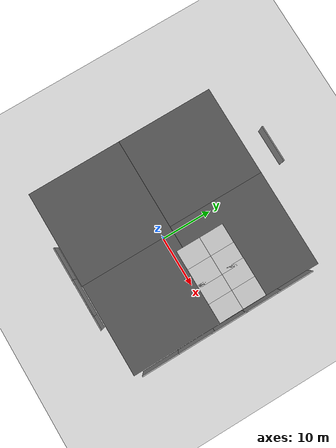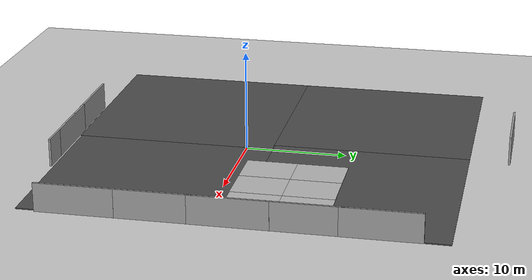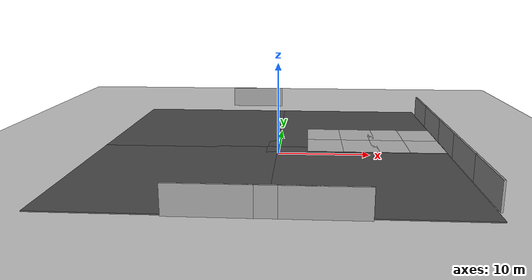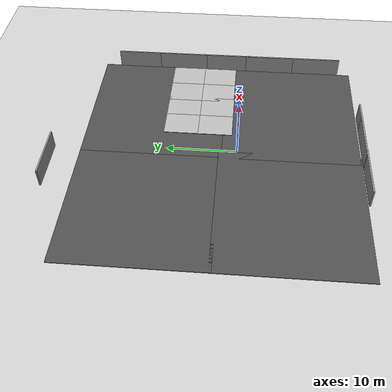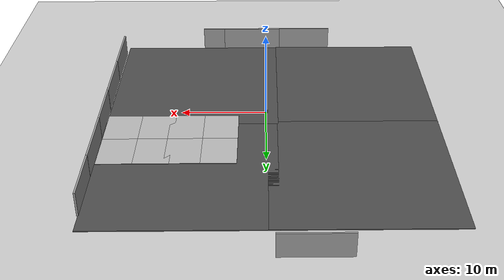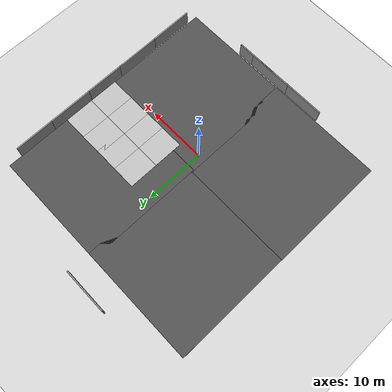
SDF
<sdf version="1.6">
 <world name="default">
  <model name="ground_plane">
   <static>1</static>
   <link name="link">
    <collision name="collision">
     <geometry><plane><normal>0 0 1</normal><size>100 100</size></plane></geometry>
     <surface><friction><ode><mu>100</mu><mu2>50</mu2></ode></friction></surface>
    </collision>
    <visual name="visual">
     <cast_shadows>0</cast_shadows>
     <geometry><plane><normal>0 0 1</normal><size>100 100</size></plane></geometry>
     <material>
      <script><uri>file://media/materials/scripts/gazebo.material</uri><name>Gazebo/Grey</name></script>
     </material>
    </visual>
   </link>
  </model>
  <model name="asphalt_plane">
   <static>1</static>
   <link name="link">
    <collision name="collision">
     <geometry><box><size>20 20 0.1</size></box></geometry>
     <surface><friction><ode><mu>100</mu><mu2>50</mu2></ode></friction></surface>
    </collision>
    <visual name="visual">
     <cast_shadows>0</cast_shadows>
     <geometry><box><size>20 20 0.1</size></box></geometry>
     <material>
      <script>
       <uri>model://asphalt_plane/materials/scripts</uri>
       <uri>model://asphalt_plane/materials/textures</uri>
       <name>vrc/asphalt</name>
      </script>
     </material>
    </visual>
   </link>
   <pose>-10.1692 -7.43707 0 0 -0 0</pose>
  </model>
  <model name="asphalt_plane_clone">
   <static>1</static>
   <link name="link">
    <collision name="collision">
     <geometry><box><size>20 20 0.1</size></box></geometry>
     <surface><friction><ode><mu>100</mu><mu2>50</mu2></ode></friction></surface>
    </collision>
    <visual name="visual">
     <cast_shadows>0</cast_shadows>
     <geometry><box><size>20 20 0.1</size></box></geometry>
     <material>
      <script>
       <uri>model://asphalt_plane/materials/scripts</uri>
       <uri>model://asphalt_plane/materials/textures</uri>
       <name>vrc/asphalt</name>
      </script>
     </material>
    </visual>
   </link>
   <pose>-10.1603 12.171 0 0 -0 0</pose>
  </model>
  <model name="asphalt_plane_clone_clone">
   <static>1</static>
   <link name="link">
    <collision name="collision">
     <geometry><box><size>20 20 0.1</size></box></geometry>
     <surface><friction><ode><mu>100</mu><mu2>50</mu2></ode></friction></surface>
    </collision>
    <visual name="visual">
     <cast_shadows>0</cast_shadows>
     <geometry><box><size>20 20 0.1</size></box></geometry>
     <material>
      <script>
       <uri>model://asphalt_plane/materials/scripts</uri>
       <uri>model://asphalt_plane/materials/textures</uri>
       <name>vrc/asphalt</name>
      </script>
     </material>
    </visual>
   </link>
   <pose>8.71597 12.1785 0 0 -0 0</pose>
  </model>
  <model name="asphalt_plane_clone_clone_0">
   <static>1</static>
   <link name="link">
    <collision name="collision">
     <geometry><box><size>20 20 0.1</size></box></geometry>
     <surface><friction><ode><mu>100</mu><mu2>50</mu2></ode></friction></surface>
    </collision>
    <visual name="visual">
     <cast_shadows>0</cast_shadows>
     <geometry><box><size>20 20 0.1</size></box></geometry>
     <material>
      <script>
       <uri>model://asphalt_plane/materials/scripts</uri>
       <uri>model://asphalt_plane/materials/textures</uri>
       <name>vrc/asphalt</name>
      </script>
     </material>
    </visual>
   </link>
   <pose>8.60996 -7.34898 0 0 -0 0</pose>
  </model>
  <model name="grey_wall">
   <static>1</static>
   <link name="link">
    <pose>0 0 1.4 0 -0 0</pose>
    <collision name="collision"><geometry><box><size>7.5 0.2 2.8</size></box></geometry></collision>
    <visual name="visual">
     <cast_shadows>0</cast_shadows>
     <geometry><box><size>7.5 0.2 2.8</size></box></geometry>
     <material>
      <script>
       <uri>model://grey_wall/materials/scripts</uri>
       <uri>model://grey_wall/materials/textures</uri>
       <name>vrc/grey_wall</name>
      </script>
     </material>
    </visual>
   </link>
   <pose>-4.8114 -17.6626 0 0 -0 0</pose>
  </model>
  <model name="grey_wall_clone">
   <static>1</static>
   <link name="link">
    <pose>0 0 1.4 0 -0 0</pose>
    <collision name="collision"><geometry><box><size>7.5 0.2 2.8</size></box></geometry></collision>
    <visual name="visual">
     <cast_shadows>0</cast_shadows>
     <geometry><box><size>7.5 0.2 2.8</size></box></geometry>
     <material>
      <script>
       <uri>model://grey_wall/materials/scripts</uri>
       <uri>model://grey_wall/materials/textures</uri>
       <name>vrc/grey_wall</name>
      </script>
     </material>
    </visual>
   </link>
   <pose>1.84642 -17.6367 0 0 -0 0</pose>
  </model>
  <model name="grey_wall_clone_0">
   <static>1</static>
   <link name="link">
    <pose>0 0 1.4 0 -0 0</pose>
    <collision name="collision"><geometry><box><size>7.5 0.2 2.8</size></box></geometry></collision>
    <visual name="visual">
     <cast_shadows>0</cast_shadows>
     <geometry><box><size>7.5 0.2 2.8</size></box></geometry>
     <material>
      <script>
       <uri>model://grey_wall/materials/scripts</uri>
       <uri>model://grey_wall/materials/textures</uri>
       <name>vrc/grey_wall</name>
      </script>
     </material>
    </visual>
   </link>
   <pose>4.62088 -17.6372 0 0 -0 0</pose>
  </model>
  <model name="grey_wall_clone_clone">
   <static>1</static>
   <link name="link">
    <pose>0 0 1.4 0 -0 0</pose>
    <collision name="collision"><geometry><box><size>7.5 0.2 2.8</size></box></geometry></collision>
    <visual name="visual">
     <cast_shadows>0</cast_shadows>
     <geometry><box><size>7.5 0.2 2.8</size></box></geometry>
     <material>
      <script>
       <uri>model://grey_wall/materials/scripts</uri>
       <uri>model://grey_wall/materials/textures</uri>
       <name>vrc/grey_wall</name>
      </script>
     </material>
    </visual>
   </link>
   <pose>-4.48764 26.0166 0 0 -0 0</pose>
  </model>
  <model name="grey_wall_clone_clone_clone">
   <static>1</static>
   <link name="link">
    <pose>0 0 1.4 0 -0 0</pose>
    <collision name="collision"><geometry><box><size>7.5 0.2 2.8</size></box></geometry></collision>
    <visual name="visual">
     <cast_shadows>0</cast_shadows>
     <geometry><box><size>7.5 0.2 2.8</size></box></geometry>
     <material>
      <script>
       <uri>model://grey_wall/materials/scripts</uri>
       <uri>model://grey_wall/materials/textures</uri>
       <name>vrc/grey_wall</name>
      </script>
     </material>
    </visual>
   </link>
   <pose>18.7544 16.0387 0 0 0 -1.56734</pose>
  </model>
  <model name="grey_wall_clone_clone_clone_clone">
   <static>1</static>
   <link name="link">
    <pose>0 0 1.4 0 -0 0</pose>
    <collision name="collision"><geometry><box><size>7.5 0.2 2.8</size></box></geometry></collision>
    <visual name="visual">
     <cast_shadows>0</cast_shadows>
     <geometry><box><size>7.5 0.2 2.8</size></box></geometry>
     <material>
      <script>
       <uri>model://grey_wall/materials/scripts</uri>
       <uri>model://grey_wall/materials/textures</uri>
       <name>vrc/grey_wall</name>
      </script>
     </material>
    </visual>
   </link>
   <pose>18.767 9.41754 0 0 0 -1.56734</pose>
  </model>
  <model name="grey_wall_clone_clone_clone_clone_0">
   <static>1</static>
   <link name="link">
    <pose>0 0 1.4 0 -0 0</pose>
    <collision name="collision"><geometry><box><size>7.5 0.2 2.8</size></box></geometry></collision>
    <visual name="visual">
     <cast_shadows>0</cast_shadows>
     <geometry><box><size>7.5 0.2 2.8</size></box></geometry>
     <material>
      <script>
       <uri>model://grey_wall/materials/scripts</uri>
       <uri>model://grey_wall/materials/textures</uri>
       <name>vrc/grey_wall</name>
      </script>
     </material>
    </visual>
   </link>
   <pose>18.7963 2.45369 0 0 0 -1.56734</pose>
  </model>
  <model name="grey_wall_clone_clone_clone_clone_1">
   <static>1</static>
   <link name="link">
    <pose>0 0 1.4 0 -0 0</pose>
    <collision name="collision"><geometry><box><size>7.5 0.2 2.8</size></box></geometry></collision>
    <visual name="visual">
     <cast_shadows>0</cast_shadows>
     <geometry><box><size>7.5 0.2 2.8</size></box></geometry>
     <material>
      <script>
       <uri>model://grey_wall/materials/scripts</uri>
       <uri>model://grey_wall/materials/textures</uri>
       <name>vrc/grey_wall</name>
      </script>
     </material>
    </visual>
   </link>
   <pose>18.8058 -4.41342 0 0 0 -1.56734</pose>
  </model>
  <model name="grey_wall_clone_clone_clone_clone_2">
   <static>1</static>
   <link name="link">
    <pose>0 0 1.4 0 -0 0</pose>
    <collision name="collision"><geometry><box><size>7.5 0.2 2.8</size></box></geometry></collision>
    <visual name="visual">
     <cast_shadows>0</cast_shadows>
     <geometry><box><size>7.5 0.2 2.8</size></box></geometry>
     <material>
      <script>
       <uri>model://grey_wall/materials/scripts</uri>
       <uri>model://grey_wall/materials/textures</uri>
       <name>vrc/grey_wall</name>
      </script>
     </material>
    </visual>
   </link>
   <pose>18.8343 -11.7301 0 0 0 -1.56734</pose>
  </model>
  <model name="mud_box">
   <static>1</static>
   <link name="link">
    <collision name="collision"><geometry><box><size>8 10 0.2</size></box></geometry></collision>
    <visual name="visual_1">
     <pose>-2 2.5 0 0 -0 0</pose>
     <cast_shadows>0</cast_shadows>
     <geometry><box><size>4 5 0.2</size></box></geometry>
     <material>
      <script>
       <uri>model://mud_box/materials/scripts</uri>
       <uri>model://mud_box/materials/textures</uri>
       <name>vrc/mud</name>
      </script>
     </material>
    </visual>
    <visual name="visual_2">
     <pose>2 2.5 0 0 -0 0</pose>
     <cast_shadows>0</cast_shadows>
     <geometry><box><size>4 5 0.2</size></box></geometry>
     <material>
      <script>
       <uri>model://mud_box/materials/scripts</uri>
       <uri>model://mud_box/materials/textures</uri>
       <name>vrc/mud</name>
      </script>
     </material>
    </visual>
    <visual name="visual_3">
     <pose>2 -2.5 0 0 -0 0</pose>
     <cast_shadows>0</cast_shadows>
     <geometry><box><size>4 5 0.2</size></box></geometry>
     <material>
      <script>
       <uri>model://mud_box/materials/scripts</uri>
       <uri>model://mud_box/materials/textures</uri>
       <name>vrc/mud</name>
      </script>
     </material>
    </visual>
    <visual name="visual_4">
     <pose>-2 -2.5 0 0 -0 0</pose>
     <cast_shadows>0</cast_shadows>
     <geometry><box><size>4 5 0.2</size></box></geometry>
     <material>
      <script>
       <uri>model://mud_box/materials/scripts</uri>
       <uri>model://mud_box/materials/textures</uri>
       <name>vrc/mud</name>
      </script>
     </material>
    </visual>
   </link>
   <pose>14.6137 5.86275 0 0 -0 0</pose>
  </model>
  <model name="mud_box_clone">
   <static>1</static>
   <link name="link">
    <collision name="collision"><geometry><box><size>8 10 0.2</size></box></geometry></collision>
    <visual name="visual_1">
     <pose>-2 2.5 0 0 -0 0</pose>
     <cast_shadows>0</cast_shadows>
     <geometry><box><size>4 5 0.2</size></box></geometry>
     <material>
      <script>
       <uri>model://mud_box/materials/scripts</uri>
       <uri>model://mud_box/materials/textures</uri>
       <name>vrc/mud</name>
      </script>
     </material>
    </visual>
    <visual name="visual_2">
     <pose>2 2.5 0 0 -0 0</pose>
     <cast_shadows>0</cast_shadows>
     <geometry><box><size>4 5 0.2</size></box></geometry>
     <material>
      <script>
       <uri>model://mud_box/materials/scripts</uri>
       <uri>model://mud_box/materials/textures</uri>
       <name>vrc/mud</name>
      </script>
     </material>
    </visual>
    <visual name="visual_3">
     <pose>2 -2.5 0 0 -0 0</pose>
     <cast_shadows>0</cast_shadows>
     <geometry><box><size>4 5 0.2</size></box></geometry>
     <material>
      <script>
       <uri>model://mud_box/materials/scripts</uri>
       <uri>model://mud_box/materials/textures</uri>
       <name>vrc/mud</name>
      </script>
     </material>
    </visual>
    <visual name="visual_4">
     <pose>-2 -2.5 0 0 -0 0</pose>
     <cast_shadows>0</cast_shadows>
     <geometry><box><size>4 5 0.2</size></box></geometry>
     <material>
      <script>
       <uri>model://mud_box/materials/scripts</uri>
       <uri>model://mud_box/materials/textures</uri>
       <name>vrc/mud</name>
      </script>
     </material>
    </visual>
   </link>
   <pose>7.23773 5.83307 0 0 -0 0</pose>
  </model>
  <light name="sun" type="directional">
   <pose>0 0 10 0 -0 0</pose>
   <diffuse>0.8 0.8 0.8 1</diffuse>
   <specular>0.2 0.2 0.2 1</specular>
   <attenuation>
    <range>1000</range>
    <constant>0.9</constant>
    <linear>0.01</linear>
    <quadratic>0.001</quadratic>
   </attenuation>
   <direction>-0.5 0.1 -0.9</direction>
  </light>
  <gravity>0 0 -9.8</gravity>
  <magnetic_field>6e-06 2.3e-05 -4.2e-05</magnetic_field>
  <atmosphere type="adiabatic"/>
  <physics name="default_physics" default="0" type="ode">
   <max_step_size>0.001</max_step_size>
   <real_time_factor>1</real_time_factor>
   <real_time_update_rate>1000</real_time_update_rate>
  </physics>
  <scene><ambient>0.4 0.4 0.4 1</ambient><background>0.7 0.7 0.7 1</background><shadows>1</shadows></scene>
  <audio><device>default</device></audio>
  <spherical_coordinates>
   <surface_model>EARTH_WGS84</surface_model>
   <latitude_deg>47.840640</latitude_deg>
   <longitude_deg>10.619944</longitude_deg>
   <elevation>740.0</elevation>
   <heading_deg>180</heading_deg>
  </spherical_coordinates>
  <include><uri>package://src/physical_robot/models/gazebo_files</uri></include>
 </world>
</sdf>

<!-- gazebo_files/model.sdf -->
<sdf version="1.5">
  <model name="donatello">
    <static>false</static>

    <!-- ****************** ROBOT BASE FOOTPRINT ***************************  -->
    <pose>0.0 0.0 0.0 0.0 0.0 0.0</pose>
    <link name="base_footprint"/>

    <!-- ********************** ROBOT BASE *********************************  -->
    <link name="base_link">

      <collision name="base_collision">
        <pose>0 0 0.14875 0 0 0</pose>
        <geometry>
          <box>
            <size>0.325 0.30 0.2575</size>
          </box>
        </geometry>
      </collision>

      <visual name="base_visual">
        <pose>0 0 0.13875 0 0 0</pose>
        <geometry>
          <box>
            <size>0.325 0.30 0.2575</size>
          </box>
        </geometry>

        <material>
          <ambient>0.0 0.0 0.0 1.0</ambient>
          <diffuse>0.0 0.0 0.0 1.0</diffuse>
          <specular>0.0 0.0 0.0 1.0</specular>
          <emissive>0.0 0.0 0.0 1.0</emissive>
        </material>
      </visual>

    </link>

    <!-- *********************** IMU SENSOR SETUP **************************  -->
    <link name="imu_link">
      <gravity>true</gravity>
      <sensor name="mpu_imu" type="imu">
        <always_on>true</always_on>
        <update_rate>400</update_rate>
        <visualize>true</visualize>
        <imu>
          <orientation>
            <x>
              <noise type="gaussian">
                <mean>0.0</mean>
                <stddev>2e-3</stddev>
              </noise>
            </x>
            <y>
              <noise type="gaussian">
                <mean>0.0</mean>
                <stddev>2e-3</stddev>
              </noise>
            </y>
            <z>
              <noise type="gaussian">
                <mean>0.0</mean>
                <stddev>2e-3</stddev>
              </noise>
            </z>
          </orientation>
          <angular_velocity>
            <x>
              <noise type="gaussian">
                <mean>0.0</mean>
                <stddev>2e-4</stddev>
              </noise>
            </x>
            <y>
              <noise type="gaussian">
                <mean>0.0</mean>
                <stddev>2e-4</stddev>
              </noise>
            </y>
            <z>
              <noise type="gaussian">
                <mean>0.0</mean>
                <stddev>2e-4</stddev>
              </noise>
            </z>
          </angular_velocity>
          <linear_acceleration>
            <x>
              <noise type="gaussian">
                <mean>0.0</mean>
                <stddev>1.7e-2</stddev>
              </noise>
            </x>
            <y>
              <noise type="gaussian">
                <mean>0.0</mean>
                <stddev>1.7e-2</stddev>
              </noise>
            </y>
            <z>
              <noise type="gaussian">
                <mean>0.0</mean>
                <stddev>1.7e-2</stddev>
              </noise>
            </z>
          </linear_acceleration>
        </imu>
        <plugin name="basic_mobile_bot_imu" filename="libgazebo_ros_imu_sensor.so">
          <initial_orientation_as_reference>false</initial_orientation_as_reference>
          <frame_name>imu_link</frame_name>
          <ros>
            <namespace>/imu</namespace>
            <remapping>~/out:=data</remapping>
          </ros>
        </plugin>
      </sensor>
    </link>

  <!-- ****************************** LIDAR *****************************    -->
  <link name="lidar_link">
    <inertial>
      <pose>0.1275 0.057 0.285 0 0 0</pose>
      <inertia>
        <ixx>0.001</ixx>
        <ixy>0.000</ixy>
        <ixz>0.000</ixz>
        <iyy>0.001</iyy>
        <iyz>0.000</iyz>
        <izz>0.001</izz>
      </inertia>
      <mass>0.17</mass>
    </inertial>

    <collision name="lidar_collision">
      <pose>0.1275 0.057 0.285 0 0 0</pose>
      <geometry>
        <cylinder>
          <radius>0.035</radius>
          <length>0.055</length>
        </cylinder>
      </geometry>
    </collision>

    <visual name="lidar_visual">
      <pose>0.1275 0.057 0.285 0 0 0</pose>
      <geometry>
        <cylinder>
          <radius>0.035</radius>
          <length>0.055</length>
        </cylinder>
      </geometry>
      <material>
        <ambient>0.0 0.0 0.0 1.0</ambient>
        <diffuse>0.0 0.0 0.0 1.0</diffuse>
        <specular>0.0 0.0 0.0 1.0</specular>
        <emissive>0.0 0.0 0.0 1.0</emissive>
      </material>
    </visual>

    <sensor name="lidar" type="ray">
      <pose>0.1275 0.057 0.285 0 0 -1.570796</pose>
      <always_on>true</always_on>
      <visualize>true</visualize>
      <update_rate>10</update_rate>
      <ray>
        <scan>
          <horizontal>
            <samples>360</samples>
            <resolution>1.00000</resolution>
            <min_angle>0</min_angle>
            <max_angle>3.14</max_angle>
          </horizontal>
        </scan>
        <range>
          <min>0.150000</min>
          <max>3.5</max>
          <resolution>0.015000</resolution>
        </range>
        <noise>
          <type>gaussian</type>
          <mean>0.0</mean>
          <stddev>0.01</stddev>
        </noise>
      </ray>
      <plugin name="scan" filename="libgazebo_ros_ray_sensor.so">
        <ros>
          <remapping>~/out:=scan</remapping>
        </ros>
        <output_type>sensor_msgs/LaserScan</output_type>
        <frame_name>lidar_link</frame_name>
      </plugin>
    </sensor>
  </link>
    <!-- *********************** DRIVE WHEELS ******************************  -->
    <link name="drivewhl_l_link">
      <pose>-0.1125 0.2 0.04 0 1.570796 1.570796</pose>

      <collision name="drivewhl_l_collision">
        <geometry>
          <cylinder>
            <radius>0.06</radius>
            <length>0.06</length>
          </cylinder>
        </geometry>
        <surface>
          <friction>
            <ode>
              <mu>0.7</mu>
              <mu2>0.7</mu2>
            </ode>
          </friction>
        </surface>

      </collision>

      <visual name="drivewhl_l_visual">
        <geometry>
          <cylinder>
            <radius>0.06</radius>
            <length>0.06</length>
          </cylinder>
        </geometry>
      </visual>
    </link>

    <link name="drivewhl_r_link">
      <pose>-0.1125 -0.2 0.04 0 1.570796 1.570796</pose>

      <collision name="drivewhl_r_collision">
        <geometry>
          <cylinder>
            <radius>0.06</radius>
            <length>0.06</length>
          </cylinder>
        </geometry>
        <surface>
          <friction>
            <ode>
              <mu>0.7</mu>
              <mu2>0.7</mu2>
            </ode>
          </friction>
        </surface>
      </collision>

      <visual name="drivewhl_r_visual">
        <geometry>
          <cylinder>
            <radius>0.06</radius>
            <length>0.06</length>
          </cylinder>
        </geometry>
      </visual>
    </link>

    <!-- *********************** IDOL WHEELS ******************************  -->
    <link name='idolwhl_l'>
      <pose>0.1125 0.2 0.04 0 1.570796 1.570796</pose>
      <collision name='collision'>
        <geometry>
          <cylinder>
            <radius>0.06</radius>
            <length>0.06</length>
          </cylinder>
        </geometry>
        <surface>
          <friction>
            <ode>
              <mu>0.01</mu>
              <mu2>0.01</mu2>
              <slip1>0.0</slip1>
              <slip2>0.0</slip2>
            </ode>
          </friction>
        </surface>
      </collision>

      <visual name="idolwhl_l_visual">
        <geometry>
          <cylinder>
            <radius>0.06</radius>
            <length>0.06</length>
          </cylinder>
        </geometry>
      </visual>

    </link>

    <link name='idolwhl_r'>
      <pose>0.1125 -0.2 0.04 0 1.570796 1.570796</pose>
      <collision name='collision'>
        <geometry>
          <cylinder>
            <radius>0.06</radius>
            <length>0.06</length>
          </cylinder>
        </geometry>
        <surface>
          <friction>
            <ode>
              <mu>0.01</mu>
              <mu2>0.01</mu2>
              <slip1>0.0</slip1>
              <slip2>0.0</slip2>
            </ode>
          </friction>
        </surface>
      </collision>

      <visual name="idolwhl_r_visual">
        <geometry>
          <cylinder>
            <radius>0.06</radius>
            <length>0.06</length>
          </cylinder>
        </geometry>
      </visual>

    </link>

    <!-- ************************ JOINTS ***********************************  -->
    <!-- Pose of the joint is the same as the child link frame -->
    <!-- Axis is the axis of rotation relative to the child link frame -->

    <joint name="base_joint" type="fixed">
      <parent>base_footprint</parent>
      <child>base_link</child>
      <pose>0 0 0.01 0 0 0</pose>
    </joint>

    <joint name="drivewhl_l_joint" type="revolute">
      <parent>base_link</parent>
      <child>drivewhl_l_link</child>
      <pose>0 0 0 0 0 0</pose>
      <axis>
        <xyz>0 0 1</xyz>
      </axis>
    </joint>

    <joint name="drivewhl_r_joint" type="revolute">
      <parent>base_link</parent>
      <child>drivewhl_r_link</child>
      <pose>0 0 0 0 0 0</pose>
      <axis>
        <xyz>0 0 1</xyz>
      </axis>
    </joint>

    <joint name='idolwhl_l_joint' type='fixed'>
      <parent>base_link</parent>
      <child>idolwhl_l</child>
      <pose>0 0 0 0 0 0</pose>
    </joint>

    <joint name='idolwhl_r_joint' type='fixed'>
      <parent>base_link</parent>
      <child>idolwhl_r</child>
      <pose>0 0 0 0 0 0</pose>
    </joint>

    <joint name="imu_joint" type="fixed">
      <parent>base_link</parent>
      <child>imu_link</child>
      <pose>0 0 0 0 0 0</pose>
    </joint>

    <joint name="lidar_joint" type="fixed">
      <parent>base_footprint</parent>
      <child>lidar_link</child>
      <pose>0 0 0 0 0 0</pose>
    </joint>

   <!-- *********************** WHEEL ODOMETRY ***************************    -->
    <plugin name="basic_mobile_bot_diff_drive" filename="libgazebo_ros_diff_drive.so">

      <update_rate>50</update_rate>

      <!-- wheels -->
      <left_joint>drivewhl_l_joint</left_joint>
      <right_joint>drivewhl_r_joint</right_joint>

      <!-- kinematics -->
      <wheel_separation>0.35</wheel_separation>
      <wheel_diameter>0.12</wheel_diameter>

      <!-- limits -->
      <max_wheel_torque>10</max_wheel_torque>
      <max_wheel_acceleration>0.5</max_wheel_acceleration>

      <!-- Receive velocity commands on this ROS topic -->
      <command_topic>cmd_vel</command_topic>

      <!-- output -->
      <!-- When false, publish no wheel odometry data to a ROS topic -->
      <publish_odom>true</publish_odom>

      <!-- When true, publish coordinate transform from odom to base_footprint -->
      <!-- I usually use the robot_localization package to publish this transform -->
      <publish_odom_tf>false</publish_odom_tf>

      <!-- When true, publish coordinate transform from base_link to the wheels -->
      <!-- The robot_state_publisher package is often used to publish this transform -->
      <publish_wheel_tf>false</publish_wheel_tf>

      <odometry_topic>odom</odometry_topic>
      <odometry_frame>odom</odometry_frame>
      <robot_base_frame>base_footprint</robot_base_frame>

      <!-- Odometry source, 0 for ENCODER, 1 for WORLD, defaults to WORLD -->
      <odometry_source>1</odometry_source>

      <!-- Change the ROS topic we will publish the odometry data to -->
      <ros>
        <remapping>odom:=wheel/odometry</remapping>
      </ros>

    </plugin>

   <!-- *********************** JOINT STATE PUBLISHER *********************   -->

    <plugin name="basic_mobile_bot_joint_state" filename="libgazebo_ros_joint_state_publisher.so">
      <ros>
        <remapping>~/out:=joint_states</remapping>
      </ros>
      <update_rate>50</update_rate>
      <joint_name>drivewhl_l_joint</joint_name>
      <joint_name>drivewhl_r_joint</joint_name>
    </plugin>

  </model>
</sdf>
